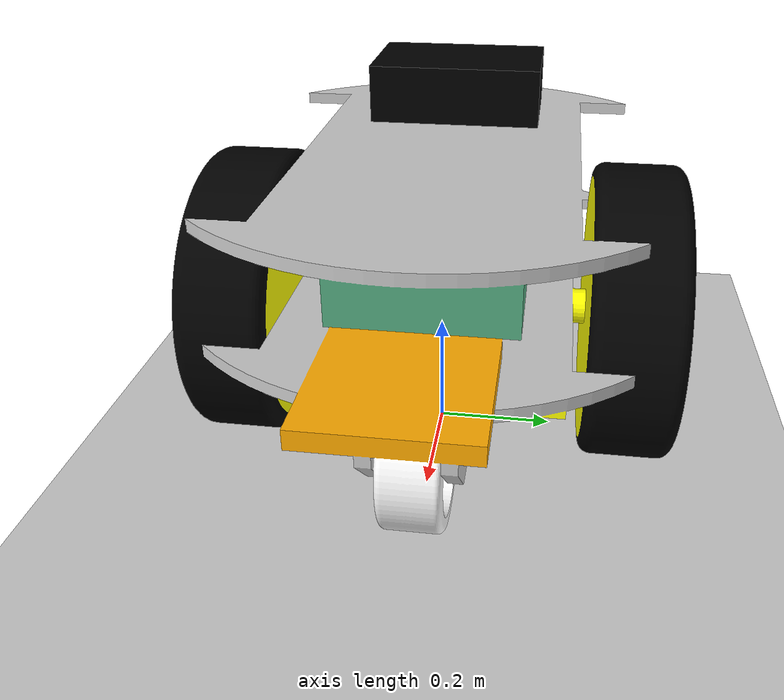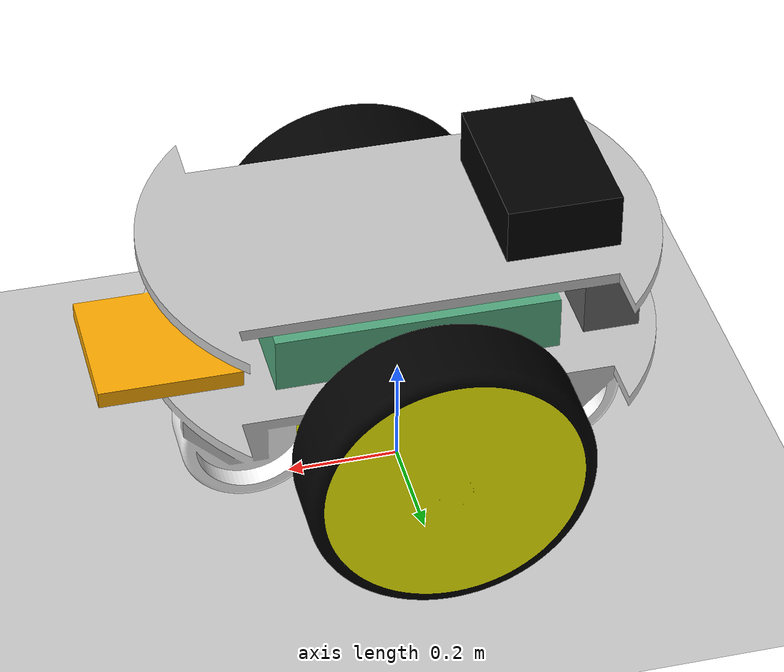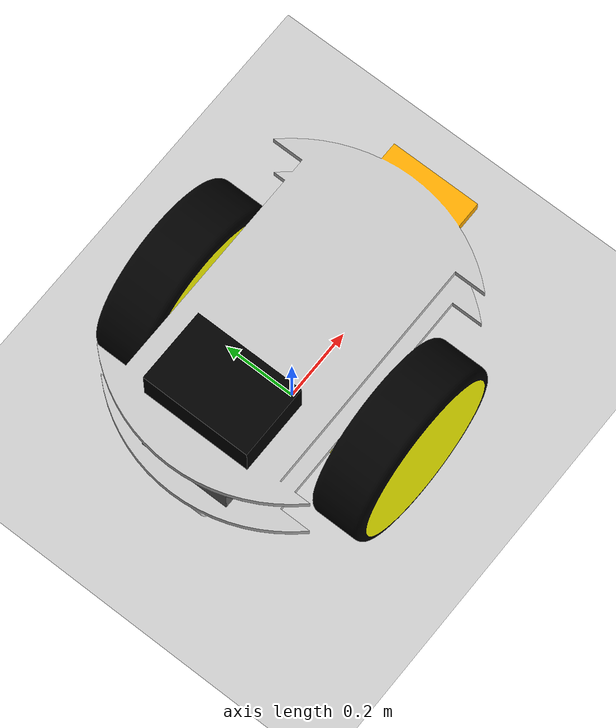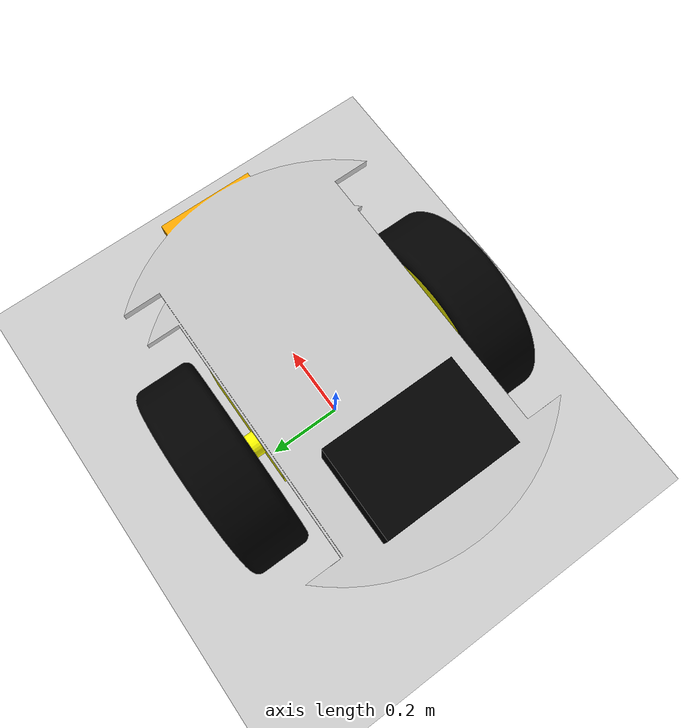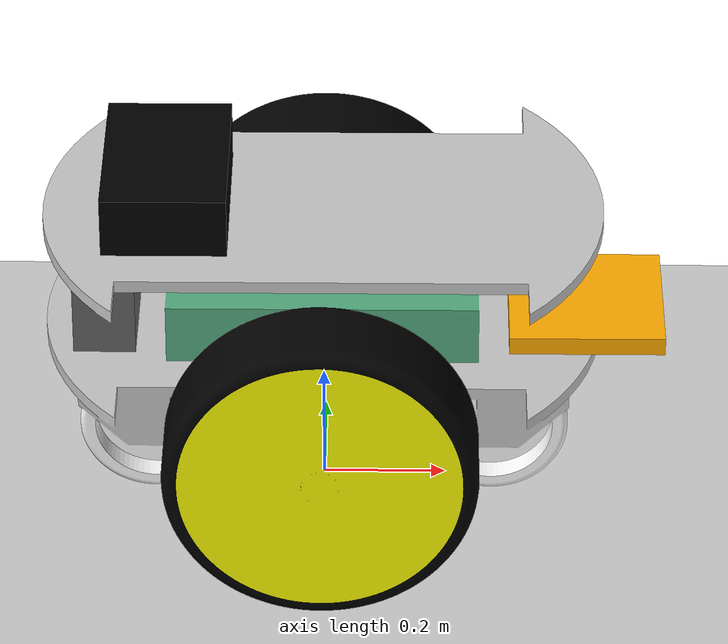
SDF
<?xml version="1.0"?>
<sdf version="1.4">
  <world name="default">
    <include>
      <uri>model://ground_plane</uri>
    </include>
    <include>
      <uri>model://sun</uri>
    </include>
    <model name="my_mesh">
      <pose>0 0 0  0 0 0</pose>
      <static>true</static>
      <link name="body">
        <visual name="visual">
          <pose>0.0 0.0 0.3 0 0 0</pose>
          <geometry>
            <mesh>
            	<uri>model://GazeboDomainRandom/models/robot/mesh.dae</uri>
            	<scale>0.01 0.01 0.01</scale>
            </mesh>
          </geometry>
        </visual>
      </link>
    </model>
  </world>
</sdf>
